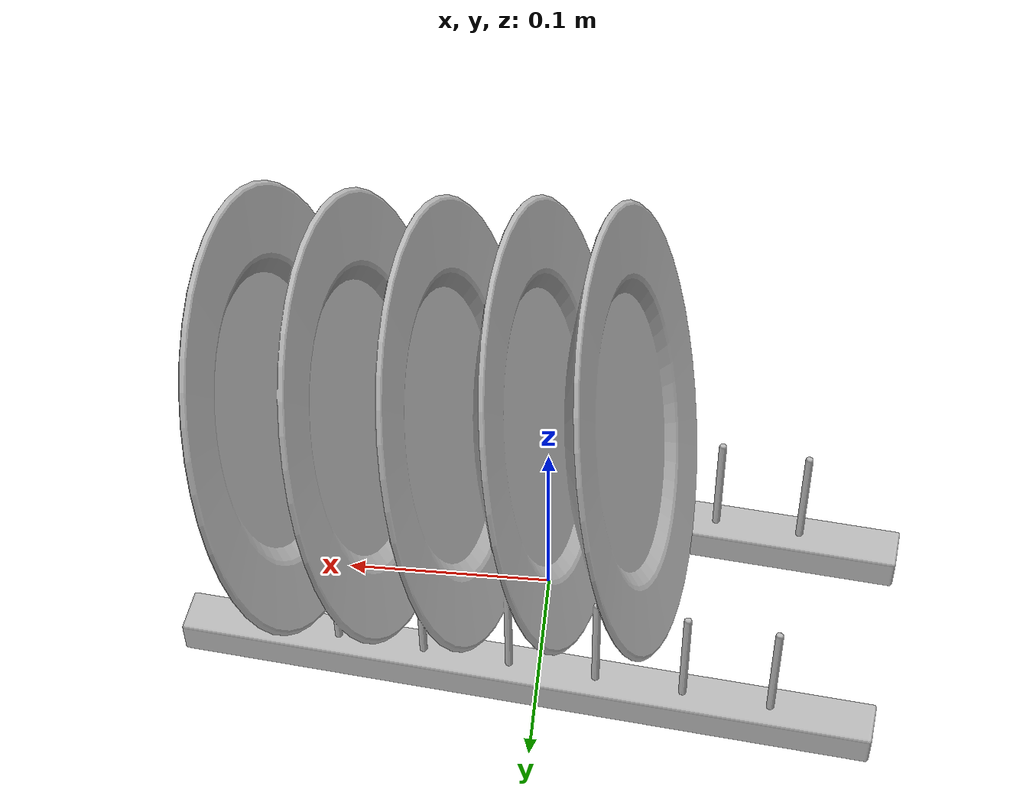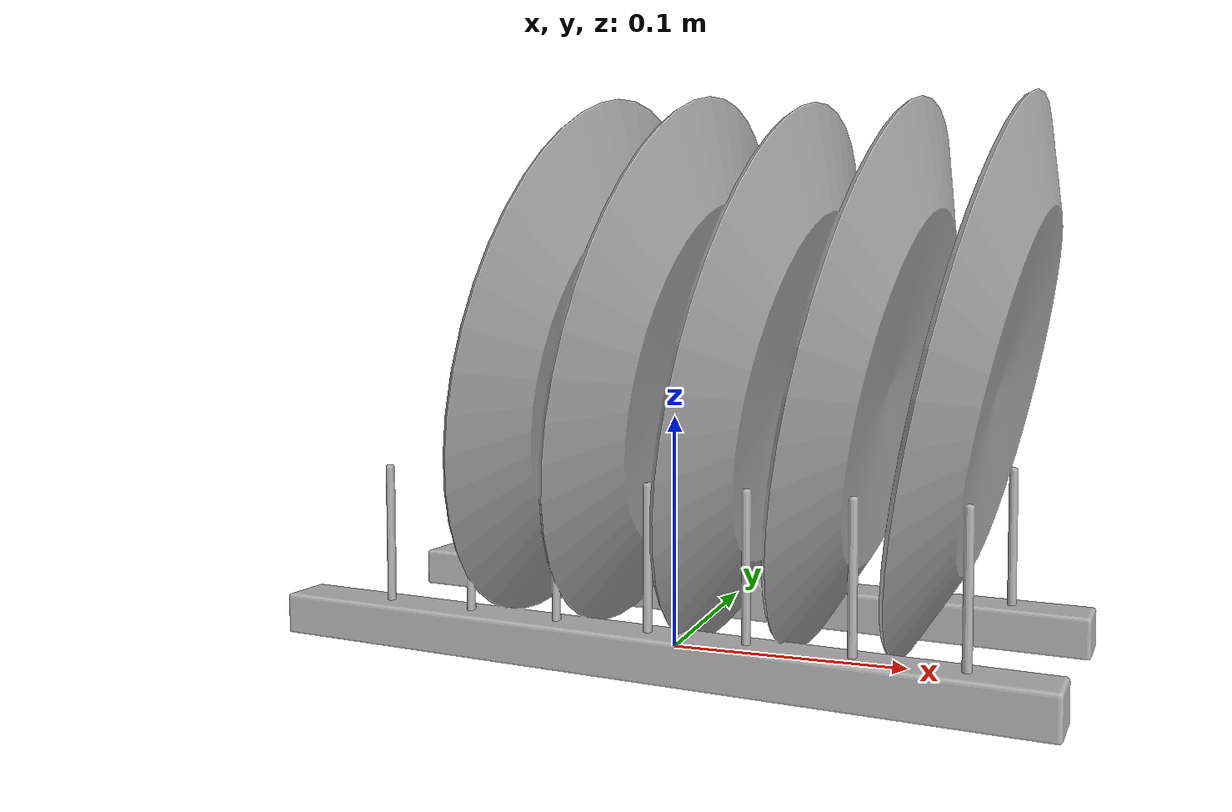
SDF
<?xml version="1.0" ?>
<sdf version="1.6">
  <model name="aws_robomaker_residential_Tableware_01">
    <static>true</static>
    <link name="link">
      <inertial>
        <mass>1</mass>
              <inertia>
          <ixx>0.1</ixx>
          <iyy>0.1</iyy>
          <izz>0.1</izz>
          <ixy>0</ixy>
          <ixz>0</ixz>
          <iyz>0</iyz>
        </inertia>
      </inertial>
      <collision name="collision">
        <geometry>
          <mesh>
            <uri>model://aws_robomaker_residential_Tableware_01/meshes/aws_Tableware_01_collision.DAE</uri>
            <scale>1 1 1</scale>
          </mesh>
        </geometry>
      </collision>
      <visual name="visual">
	    <geometry>
          <mesh>
            <uri>model://aws_robomaker_residential_Tableware_01/meshes/aws_Tableware_01_visual.DAE</uri>
          </mesh>
        </geometry>
      <meta> <layer> 1 </layer></meta>
</visual>
    </link>
  </model>
</sdf>
